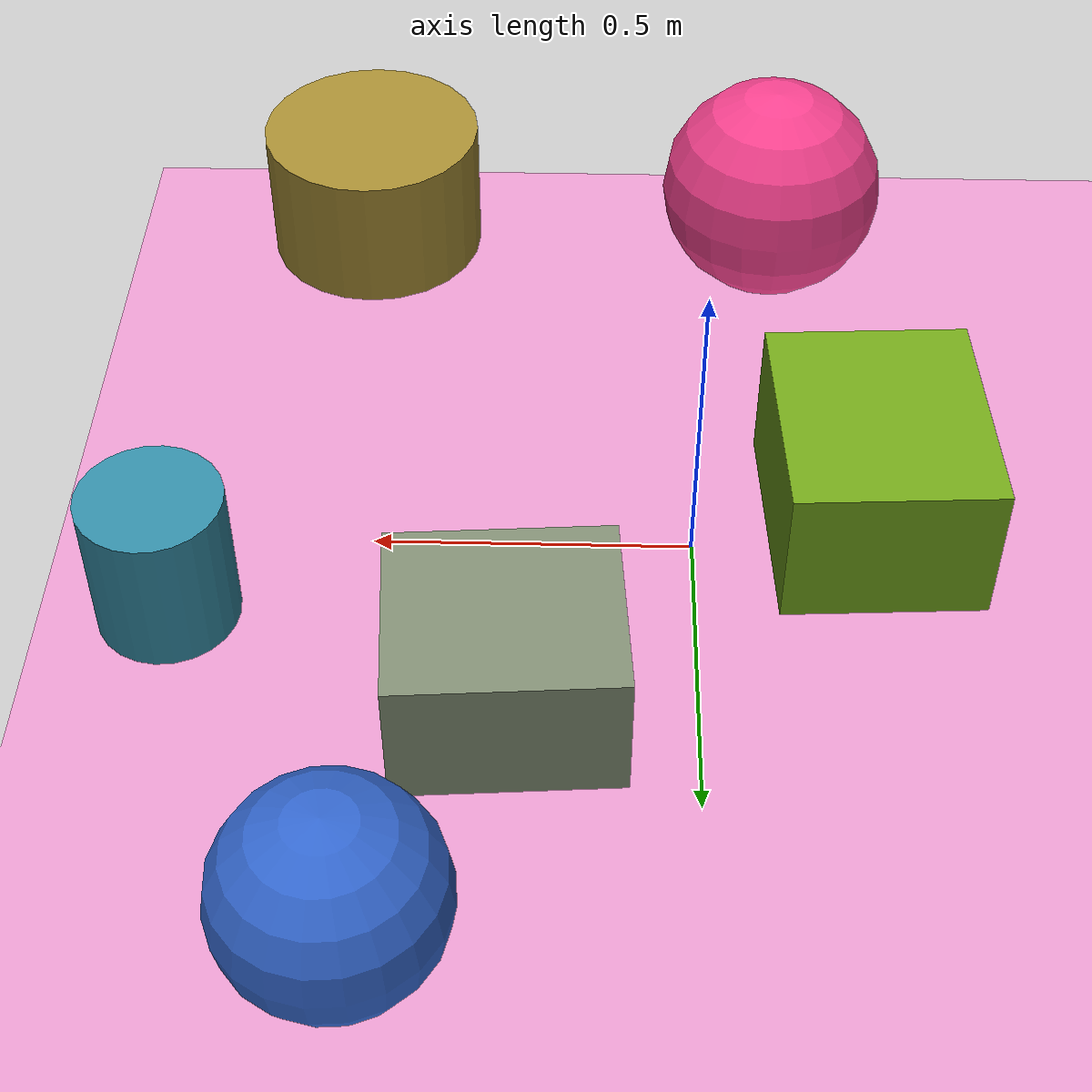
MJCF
<mujoco>
   <asset>
<texture type="skybox" builtin="gradient" rgb1="0.1 0.3 0.0" rgb2="0.7 0.9 0.2" width="256" height="256"/>
<texture name="checker_0" builtin="checker" rgb1="0.1 0.5 0.7" rgb2="0.3 0.3 0.9" width="200" height="200"/>
<texture name="checker_1" builtin="checker" rgb1="0.9 0.2 0.8" rgb2="1.0 0.3 0.3" width="200" height="200"/>
<texture name="checker_2" builtin="checker" rgb1="0.4 0.3 0.8" rgb2="0.0 0.8 0.5" width="200" height="200"/>
<texture name="checker_3" builtin="checker" rgb1="0.2 0.4 0.1" rgb2="0.8 0.7 0.8" width="200" height="200"/>
<texture name="checker_4" builtin="checker" rgb1="0.6 1.0 0.0" rgb2="0.7 0.1 0.4" width="200" height="200"/>
<texture name="checker_5" builtin="checker" rgb1="0.1 0.4 0.2" rgb2="0.8 0.9 0.0" width="200" height="200"/><material name="checker_0_mat" reflectance="0" texrepeat="5 5" texture="checker_0" texuniform="false" />
<material name="checker_1_mat" reflectance="0" texrepeat="6 6" texture="checker_1" texuniform="false" />
<material name="checker_2_mat" reflectance="0" texrepeat="5 5" texture="checker_2" texuniform="false" />
<material name="checker_3_mat" reflectance="0" texrepeat="3 3" texture="checker_3" texuniform="false" />
<material name="checker_4_mat" reflectance="0" texrepeat="4 4" texture="checker_4" texuniform="false" />
<material name="checker_5_mat" reflectance="0" texrepeat="6 6" texture="checker_5" texuniform="false" />
   </asset>

   <worldbody>
      <light diffuse=".9 .9 .9" pos="0 0 3" dir="0 0 -1"/>
     <geom type="plane" size="1 1 0.1" rgba="0.9 0.6 0.8 1"/>
<geom type="sphere" pos="0.48 0.76 0.16" size="0.16 0.16 0.16" material="checker_0_mat" euler="0 0 31" />
<geom type="sphere" pos="-0.15 -0.7 0.19" size="0.19 0.19 0.19" material="checker_1_mat" euler="0 0 72" />
<geom type="cylinder" pos="0.8 0.15 0.12" size="0.11 0.12 0.12" material="checker_2_mat" euler="0 0 28" />
<geom type="box" pos="0.28 0.33 0.11" size="0.17 0.15 0.11" material="checker_3_mat" euler="0 0 4" />
<geom type="cylinder" pos="0.56 -0.79 0.12" size="0.19 0.12 0.12" material="checker_4_mat" euler="0 0 16" />
<geom type="box" pos="-0.28 -0.06 0.12" size="0.16 0.19 0.12" material="checker_5_mat" euler="0 0 3" /><camera euler="60 0 180" fovy="60" name="camera1" pos="-0.2 -1.5 1"></camera>   </worldbody>
</mujoco>
